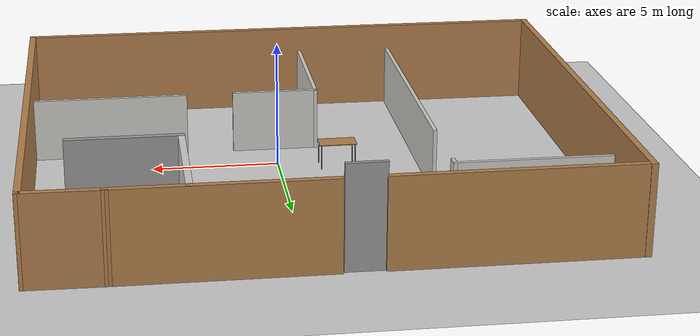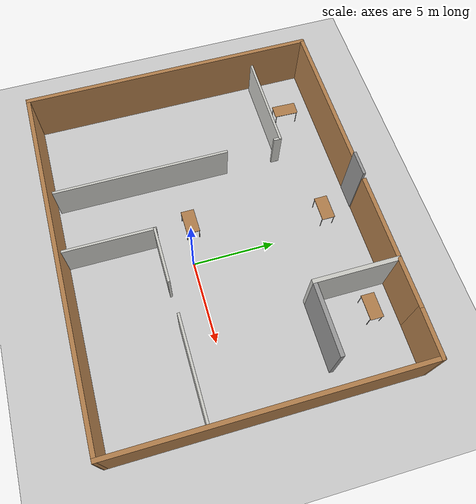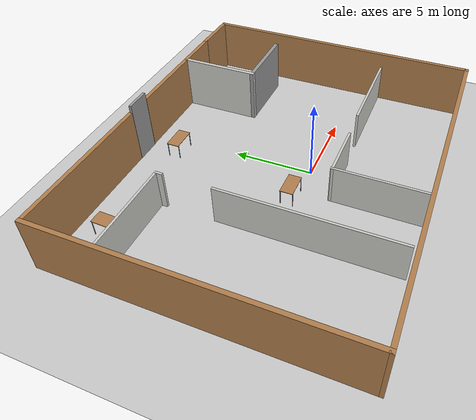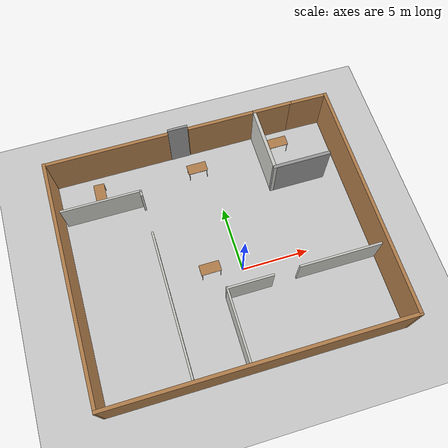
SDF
<sdf version="1.6">
 <world name="default">
  <light name="sun" type="directional">
   <pose>0 0 10 0 -0 0</pose>
   <diffuse>0.8 0.8 0.8 1</diffuse>
   <specular>0.2 0.2 0.2 1</specular>
   <attenuation>
    <range>1000</range>
    <constant>0.9</constant>
    <linear>0.01</linear>
    <quadratic>0.001</quadratic>
   </attenuation>
   <direction>-0.5 0.1 -0.9</direction>
  </light>
  <model name="ground_plane">
   <static>1</static>
   <link name="link">
    <collision name="collision">
     <geometry><plane><normal>0 0 1</normal><size>100 100</size></plane></geometry>
     <surface>
      <contact><collide_bitmask>65535</collide_bitmask></contact>
      <friction><ode><mu>100</mu><mu2>50</mu2></ode></friction>
     </surface>
    </collision>
    <visual name="visual">
     <cast_shadows>0</cast_shadows>
     <geometry><plane><normal>0 0 1</normal><size>100 100</size></plane></geometry>
     <material>
      <script><uri>file://media/materials/scripts/gazebo.material</uri><name>Gazebo/Grey</name></script>
     </material>
    </visual>
   </link>
  </model>
  <gravity>0 0 -9.8</gravity>
  <magnetic_field>6e-06 2.3e-05 -4.2e-05</magnetic_field>
  <atmosphere type="adiabatic"/>
  <physics name="default_physics" default="0" type="ode">
   <max_step_size>0.001</max_step_size>
   <real_time_factor>1</real_time_factor>
   <real_time_update_rate>1000</real_time_update_rate>
  </physics>
  <scene><ambient>0.4 0.4 0.4 1</ambient><background>0.7 0.7 0.7 1</background><shadows>1</shadows></scene>
  <audio><device>default</device></audio>
  <spherical_coordinates>
   <surface_model>EARTH_WGS84</surface_model>
   <latitude_deg>0</latitude_deg>
   <longitude_deg>0</longitude_deg>
   <elevation>0</elevation>
   <heading_deg>0</heading_deg>
  </spherical_coordinates>
  <model name="Building">
   <pose>-1.05841 1.60982 0 0 -0 0</pose>
   <link name="Door_0">
    <collision name="Door_0_Collision">
     <geometry><box><size>1.5 0.17 4</size></box></geometry>
     <pose>0 0 2 0 -0 0</pose>
    </collision>
    <visual name="Door_0_Visual">
     <pose>0 0 2 0 -0 0</pose>
     <geometry><box><size>1.5 0.17 4</size></box></geometry>
     <material>
      <script><uri>file://media/materials/scripts/gazebo.material</uri><name>Gazebo/Grey</name></script>
     </material>
    </visual>
    <pose>-0.815483 8.87818 0 0 -0 0</pose>
   </link>
   <link name="Wall_1">
    <collision name="Wall_1_Collision">
     <geometry><box><size>9.25 0.25 3.5</size></box></geometry>
     <pose>0 0 1.75 0 -0 0</pose>
    </collision>
    <visual name="Wall_1_Visual">
     <pose>0 0 1.75 0 -0 0</pose>
     <geometry><box><size>9.25 0.25 3.5</size></box></geometry>
     <material>
      <script><uri>file://media/materials/scripts/gazebo.material</uri><name>Gazebo/Wood</name></script>
      <ambient>1 1 1 1</ambient>
     </material>
     <meta><layer>0</layer></meta>
    </visual>
    <pose>-6.14568 8.92929 0 0 -0 0</pose>
   </link>
   <link name="Wall_13">
    <collision name="Wall_13_Collision">
     <geometry><box><size>0.15 0.15 2.5</size></box></geometry>
     <pose>0 0 1.25 0 -0 0</pose>
    </collision>
    <visual name="Wall_13_Visual">
     <pose>0 0 1.25 0 -0 0</pose>
     <geometry><box><size>0.15 0.15 2.5</size></box></geometry>
     <material>
      <script><uri>file://media/materials/scripts/gazebo.material</uri><name>Gazebo/Grey</name></script>
      <ambient>1 1 1 1</ambient>
     </material>
     <meta><layer>0</layer></meta>
    </visual>
    <pose>-10.7159 8.91724 0 0 -0 0</pose>
   </link>
   <link name="Wall_14">
    <collision name="Wall_14_Collision">
     <geometry><box><size>0.15 0.15 2.5</size></box></geometry>
     <pose>0 0 1.25 0 -0 0</pose>
    </collision>
    <visual name="Wall_14_Visual">
     <pose>0 0 1.25 0 -0 0</pose>
     <geometry><box><size>0.15 0.15 2.5</size></box></geometry>
     <material>
      <script><uri>file://media/materials/scripts/gazebo.material</uri><name>Gazebo/Grey</name></script>
      <ambient>1 1 1 1</ambient>
     </material>
     <meta><layer>0</layer></meta>
    </visual>
    <pose>-10.7159 8.91724 0 0 -0 0</pose>
   </link>
   <link name="Wall_17">
    <collision name="Wall_17_Collision">
     <geometry><box><size>5.10048 0.25 3.5</size></box></geometry>
     <pose>0 0 1.75 0 -0 0</pose>
    </collision>
    <visual name="Wall_17_Visual">
     <pose>0 0 1.75 0 -0 0</pose>
     <geometry><box><size>5.10048 0.25 3.5</size></box></geometry>
     <material>
      <script><uri>file://media/materials/scripts/gazebo.material</uri><name>Gazebo/CeilingTiled</name></script>
      <ambient>0 0 0 1</ambient>
     </material>
     <meta><layer>0</layer></meta>
    </visual>
    <pose>5.1471 6.47424 0 0 -0 -1.5708</pose>
   </link>
   <link name="Wall_18">
    <collision name="Wall_18_Collision">
     <geometry><box><size>4.35047 0.25 3.5</size></box></geometry>
     <pose>0 0 1.75 0 -0 0</pose>
    </collision>
    <visual name="Wall_18_Visual">
     <pose>0 0 1.75 0 -0 0</pose>
     <geometry><box><size>4.35047 0.25 3.5</size></box></geometry>
     <material>
      <script><uri>file://media/materials/scripts/gazebo.material</uri><name>Gazebo/Grey</name></script>
      <ambient>0 0 0 1</ambient>
     </material>
     <meta><layer>0</layer></meta>
    </visual>
    <pose>7.1971 4.04924 0 0 -0 0</pose>
   </link>
   <link name="Wall_3">
    <collision name="Wall_3_Collision">
     <geometry><box><size>8.09972 0.25 3.5</size></box></geometry>
     <pose>0 0 1.75 0 -0 0</pose>
    </collision>
    <visual name="Wall_3_Visual">
     <pose>0 0 1.75 0 -0 0</pose>
     <geometry><box><size>8.09972 0.25 3.5</size></box></geometry>
     <material>
      <script><uri>file://media/materials/scripts/gazebo.material</uri><name>Gazebo/Wood</name></script>
      <ambient>1 1 1 1</ambient>
     </material>
     <meta><layer>0</layer></meta>
    </visual>
    <pose>4.0241 8.94424 0 0 -0 0</pose>
   </link>
   <link name="Wall_4">
    <collision name="Wall_4_Collision">
     <geometry><box><size>3.10115 0.25 3.5</size></box></geometry>
     <pose>0 0 1.75 0 -0 0</pose>
    </collision>
    <visual name="Wall_4_Visual">
     <pose>0 0 1.75 0 -0 0</pose>
     <geometry><box><size>3.10115 0.25 3.5</size></box></geometry>
     <material>
      <script><uri>file://media/materials/scripts/gazebo.material</uri><name>Gazebo/Wood</name></script>
      <ambient>1 1 1 1</ambient>
     </material>
     <meta><layer>0</layer></meta>
    </visual>
    <pose>9.3741 8.92424 0 0 -0 -0.014034</pose>
   </link>
   <link name="Wall_5">
    <collision name="Wall_5_Collision">
     <geometry><box><size>18.1004 0.25 3.5</size></box></geometry>
     <pose>0 0 1.75 0 -0 0</pose>
    </collision>
    <visual name="Wall_5_Visual">
     <pose>0 0 1.75 0 -0 0</pose>
     <geometry><box><size>18.1004 0.25 3.5</size></box></geometry>
     <material>
      <script><uri>file://media/materials/scripts/gazebo.material</uri><name>Gazebo/Wood</name></script>
      <ambient>1 1 1 1</ambient>
     </material>
     <meta><layer>0</layer></meta>
    </visual>
    <pose>10.7991 -0.020758 0 0 -0 -1.5708</pose>
   </link>
   <link name="Wall_6">
    <collision name="Wall_6_Collision">
     <geometry><box><size>21.8503 0.25 3.5</size></box></geometry>
     <pose>0 0 1.75 0 -0 0</pose>
    </collision>
    <visual name="Wall_6_Visual">
     <pose>0 0 1.75 0 -0 0</pose>
     <geometry><box><size>21.8503 0.25 3.5</size></box></geometry>
     <material>
      <script><uri>file://media/materials/scripts/gazebo.material</uri><name>Gazebo/Wood</name></script>
      <ambient>1 1 1 1</ambient>
     </material>
     <meta><layer>0</layer></meta>
    </visual>
    <pose>-0.000902 -8.92576 0 0 -0 3.13974</pose>
   </link>
   <link name="Wall_7">
    <collision name="Wall_7_Collision">
     <geometry><box><size>18.1 0.25 3.5</size></box></geometry>
     <pose>0 0 1.75 0 -0 0</pose>
    </collision>
    <visual name="Wall_7_Visual">
     <pose>0 0 1.75 0 -0 0</pose>
     <geometry><box><size>18.1 0.25 3.5</size></box></geometry>
     <material>
      <script><uri>file://media/materials/scripts/gazebo.material</uri><name>Gazebo/Wood</name></script>
      <ambient>1 1 1 1</ambient>
     </material>
     <meta><layer>0</layer></meta>
    </visual>
    <pose>-10.8009 0.019242 0 0 -0 1.5708</pose>
   </link>
   <link name="Window_0">
    <collision name="Window_0_Collision">
     <geometry><box><size>0.8 0.17 0.8</size></box></geometry>
     <pose>0 0 0.4 0 -0 0</pose>
    </collision>
    <visual name="Window_0_Visual">
     <pose>0 0 0.4 0 -0 0</pose>
     <geometry><box><size>0.8 0.17 0.8</size></box></geometry>
     <material>
      <script><uri>file://media/materials/scripts/gazebo.material</uri><name>Gazebo/Grey</name></script>
     </material>
    </visual>
    <pose>8.40754 8.94648 0.5 0 -0 0</pose>
   </link>
   <static>1</static>
  </model>
  <model name="BuildingAdd">
   <pose>-0.92237 -0.11893 0 0 -0 0</pose>
   <link name="Wall_0">
    <collision name="Wall_0_Collision">
     <geometry><box><size>6.25 0.15 2.5</size></box></geometry>
     <pose>0 0 1.25 0 -0 0</pose>
    </collision>
    <visual name="Wall_0_Visual">
     <pose>0 0 1.25 0 -0 0</pose>
     <geometry><box><size>6.25 0.15 2.5</size></box></geometry>
     <material>
      <script><uri>file://media/materials/scripts/gazebo.material</uri><name>Gazebo/CeilingTiled</name></script>
      <ambient>0.533333 0.541176 0.521569 1</ambient>
     </material>
     <meta><layer>0</layer></meta>
    </visual>
    <pose>7.54237 -1.60107 0 0 -0 3.14159</pose>
   </link>
   <link name="Wall_10">
    <collision name="Wall_10_Collision">
     <geometry><box><size>6 0.15 2.5</size></box></geometry>
     <pose>0 0 1.25 0 -0 0</pose>
    </collision>
    <visual name="Wall_10_Visual">
     <pose>0 0 1.25 0 -0 0</pose>
     <geometry><box><size>6 0.15 2.5</size></box></geometry>
     <material>
      <script><uri>file://media/materials/scripts/gazebo.material</uri><name>Gazebo/CeilingTiled</name></script>
      <ambient>0.533333 0.541176 0.521569 1</ambient>
     </material>
     <meta><layer>0</layer></meta>
    </visual>
    <pose>-7.66737 7.21686 0 0 -0 3.14159</pose>
   </link>
   <link name="Wall_12">
    <collision name="Wall_12_Collision">
     <geometry><box><size>0.5 0.15 2.5</size></box></geometry>
     <pose>0 0 1.25 0 -0 0</pose>
    </collision>
    <visual name="Wall_12_Visual">
     <pose>0 0 1.25 0 -0 0</pose>
     <geometry><box><size>0.5 0.15 2.5</size></box></geometry>
     <material>
      <script><uri>file://media/materials/scripts/gazebo.material</uri><name>Gazebo/CeilingTiled</name></script>
      <ambient>0.533333 0.541176 0.521569 1</ambient>
     </material>
     <meta><layer>0</layer></meta>
    </visual>
    <pose>-4.74237 7.04186 0 0 -0 -1.5708</pose>
   </link>
   <link name="Wall_3">
    <collision name="Wall_3_Collision">
     <geometry><box><size>3.46053 0.15 2.5</size></box></geometry>
     <pose>0 0 1.25 0 -0 0</pose>
    </collision>
    <visual name="Wall_3_Visual">
     <pose>0 0 1.25 0 -0 0</pose>
     <geometry><box><size>3.46053 0.15 2.5</size></box></geometry>
     <material>
      <script><uri>file://media/materials/scripts/gazebo.material</uri><name>Gazebo/CeilingTiled</name></script>
      <ambient>0.533333 0.541176 0.521569 1</ambient>
     </material>
     <meta><layer>0</layer></meta>
    </visual>
    <pose>0.827039 -1.65732 0 0 -0 0</pose>
   </link>
   <link name="Wall_5">
    <collision name="Wall_5_Collision">
     <geometry><box><size>5.75 0.15 2.5</size></box></geometry>
     <pose>0 0 1.25 0 -0 0</pose>
    </collision>
    <visual name="Wall_5_Visual">
     <pose>0 0 1.25 0 -0 0</pose>
     <geometry><box><size>5.75 0.15 2.5</size></box></geometry>
     <material>
      <script><uri>file://media/materials/scripts/gazebo.material</uri><name>Gazebo/CeilingTiled</name></script>
      <ambient>0.533333 0.541176 0.521569 1</ambient>
     </material>
     <meta><layer>0</layer></meta>
    </visual>
    <pose>-0.827734 -4.41686 0 0 -0 -1.5708</pose>
   </link>
   <link name="Wall_7">
    <collision name="Wall_7_Collision">
     <geometry><box><size>10.75 0.15 2.5</size></box></geometry>
     <pose>0 0 1.25 0 -0 0</pose>
    </collision>
    <visual name="Wall_7_Visual">
     <pose>0 0 1.25 0 -0 0</pose>
     <geometry><box><size>10.75 0.15 2.5</size></box></geometry>
     <material>
      <script><uri>file://media/materials/scripts/gazebo.material</uri><name>Gazebo/CeilingTiled</name></script>
      <ambient>0.533333 0.541176 0.521569 1</ambient>
     </material>
     <meta><layer>0</layer></meta>
    </visual>
    <pose>-4.71035 -1.55701 0 0 -0 -1.5708</pose>
   </link>
   <static>1</static>
  </model>
  <model name="table">
   <static>1</static>
   <link name="link">
    <collision name="surface">
     <pose>0 0 1 0 -0 0</pose>
     <geometry><box><size>1.5 0.8 0.03</size></box></geometry>
     <surface><friction><ode><mu>0.6</mu><mu2>0.6</mu2></ode></friction></surface>
    </collision>
    <visual name="visual1">
     <pose>0 0 1 0 -0 0</pose>
     <geometry><box><size>1.5 0.8 0.03</size></box></geometry>
     <material>
      <script><uri>file://media/materials/scripts/gazebo.material</uri><name>Gazebo/Wood</name></script>
     </material>
    </visual>
    <collision name="front_left_leg">
     <pose>0.68 0.38 0.5 0 -0 0</pose>
     <geometry><cylinder><radius>0.02</radius><length>1</length></cylinder></geometry>
    </collision>
    <visual name="front_left_leg">
     <pose>0.68 0.38 0.5 0 -0 0</pose>
     <geometry><cylinder><radius>0.02</radius><length>1</length></cylinder></geometry>
     <material>
      <script><uri>file://media/materials/scripts/gazebo.material</uri><name>Gazebo/Grey</name></script>
     </material>
    </visual>
    <collision name="front_right_leg">
     <pose>0.68 -0.38 0.5 0 -0 0</pose>
     <geometry><cylinder><radius>0.02</radius><length>1</length></cylinder></geometry>
    </collision>
    <visual name="front_right_leg">
     <pose>0.68 -0.38 0.5 0 -0 0</pose>
     <geometry><cylinder><radius>0.02</radius><length>1</length></cylinder></geometry>
     <material>
      <script><uri>file://media/materials/scripts/gazebo.material</uri><name>Gazebo/Grey</name></script>
     </material>
    </visual>
    <collision name="back_right_leg">
     <pose>-0.68 -0.38 0.5 0 -0 0</pose>
     <geometry><cylinder><radius>0.02</radius><length>1</length></cylinder></geometry>
    </collision>
    <visual name="back_right_leg">
     <pose>-0.68 -0.38 0.5 0 -0 0</pose>
     <geometry><cylinder><radius>0.02</radius><length>1</length></cylinder></geometry>
     <material>
      <script><uri>file://media/materials/scripts/gazebo.material</uri><name>Gazebo/Grey</name></script>
     </material>
    </visual>
    <collision name="back_left_leg">
     <pose>-0.68 0.38 0.5 0 -0 0</pose>
     <geometry><cylinder><radius>0.02</radius><length>1</length></cylinder></geometry>
    </collision>
    <visual name="back_left_leg">
     <pose>-0.68 0.38 0.5 0 -0 0</pose>
     <geometry><cylinder><radius>0.02</radius><length>1</length></cylinder></geometry>
     <material>
      <script><uri>file://media/materials/scripts/gazebo.material</uri><name>Gazebo/Grey</name></script>
     </material>
    </visual>
   </link>
   <pose>-1.0384 8.54838 0 0 -0 0</pose>
  </model>
  <model name="table_clone">
   <static>1</static>
   <link name="link">
    <collision name="surface">
     <pose>0 0 1 0 -0 0</pose>
     <geometry><box><size>1.5 0.8 0.03</size></box></geometry>
     <surface><friction><ode><mu>0.6</mu><mu2>0.6</mu2></ode></friction></surface>
    </collision>
    <visual name="visual1">
     <pose>0 0 1 0 -0 0</pose>
     <geometry><box><size>1.5 0.8 0.03</size></box></geometry>
     <material>
      <script><uri>file://media/materials/scripts/gazebo.material</uri><name>Gazebo/Wood</name></script>
     </material>
    </visual>
    <collision name="front_left_leg">
     <pose>0.68 0.38 0.5 0 -0 0</pose>
     <geometry><cylinder><radius>0.02</radius><length>1</length></cylinder></geometry>
    </collision>
    <visual name="front_left_leg">
     <pose>0.68 0.38 0.5 0 -0 0</pose>
     <geometry><cylinder><radius>0.02</radius><length>1</length></cylinder></geometry>
     <material>
      <script><uri>file://media/materials/scripts/gazebo.material</uri><name>Gazebo/Grey</name></script>
     </material>
    </visual>
    <collision name="front_right_leg">
     <pose>0.68 -0.38 0.5 0 -0 0</pose>
     <geometry><cylinder><radius>0.02</radius><length>1</length></cylinder></geometry>
    </collision>
    <visual name="front_right_leg">
     <pose>0.68 -0.38 0.5 0 -0 0</pose>
     <geometry><cylinder><radius>0.02</radius><length>1</length></cylinder></geometry>
     <material>
      <script><uri>file://media/materials/scripts/gazebo.material</uri><name>Gazebo/Grey</name></script>
     </material>
    </visual>
    <collision name="back_right_leg">
     <pose>-0.68 -0.38 0.5 0 -0 0</pose>
     <geometry><cylinder><radius>0.02</radius><length>1</length></cylinder></geometry>
    </collision>
    <visual name="back_right_leg">
     <pose>-0.68 -0.38 0.5 0 -0 0</pose>
     <geometry><cylinder><radius>0.02</radius><length>1</length></cylinder></geometry>
     <material>
      <script><uri>file://media/materials/scripts/gazebo.material</uri><name>Gazebo/Grey</name></script>
     </material>
    </visual>
    <collision name="back_left_leg">
     <pose>-0.68 0.38 0.5 0 -0 0</pose>
     <geometry><cylinder><radius>0.02</radius><length>1</length></cylinder></geometry>
    </collision>
    <visual name="back_left_leg">
     <pose>-0.68 0.38 0.5 0 -0 0</pose>
     <geometry><cylinder><radius>0.02</radius><length>1</length></cylinder></geometry>
     <material>
      <script><uri>file://media/materials/scripts/gazebo.material</uri><name>Gazebo/Grey</name></script>
     </material>
    </visual>
   </link>
   <pose>-8.61704 8.5535 0 0 -0 1.5424</pose>
  </model>
  <model name="ball">
   <link name="link_0">
    <inertial>
     <mass>1</mass>
     <inertia><ixx>0.1</ixx><ixy>0</ixy><ixz>0</ixz><iyy>0.1</iyy><iyz>0</iyz><izz>0.1</izz></inertia>
    </inertial>
    <visual name="visual">
     <geometry><sphere><radius>0.1</radius></sphere></geometry>
     <material>
      <lighting>1</lighting>
      <script><uri>file://media/materials/scripts/gazebo.material</uri><name>Gazebo/Grey</name></script>
      <shader type="vertex"><normal_map>__default__</normal_map></shader>
      <ambient>1 1 1 1</ambient>
      <diffuse>1 1 1 1</diffuse>
      <specular>1 1 1 1</specular>
      <emissive>1 1 1 1</emissive>
     </material>
    </visual>
    <collision name="collision">
     <geometry><sphere><radius>0.1</radius></sphere></geometry>
     <surface>
      <friction>
       <ode><mu>1</mu><mu2>1</mu2><fdir1>0 0 0</fdir1><slip1>0</slip1><slip2>0</slip2></ode>
       <torsional>
        <coefficient>1</coefficient>
        <patch_radius>0</patch_radius>
        <surface_radius>0</surface_radius>
        <use_patch_radius>1</use_patch_radius>
        <ode><slip>0</slip></ode>
       </torsional>
      </friction>
      <bounce><restitution_coefficient>0</restitution_coefficient><threshold>1e+06</threshold></bounce>
      <contact>
       <collide_without_contact>0</collide_without_contact>
       <collide_without_contact_bitmask>1</collide_without_contact_bitmask>
       <collide_bitmask>1</collide_bitmask>
       <ode>
        <soft_cfm>0</soft_cfm>
        <soft_erp>0.2</soft_erp>
        <kp>1e+13</kp>
        <kd>1</kd>
        <max_vel>0.01</max_vel>
        <min_depth>0</min_depth>
       </ode>
       <bullet>
        <split_impulse>1</split_impulse>
        <split_impulse_penetration_threshold>-0.01</split_impulse_penetration_threshold>
        <soft_cfm>0</soft_cfm>
        <soft_erp>0.2</soft_erp>
        <kp>1e+13</kp>
        <kd>1</kd>
       </bullet>
      </contact>
     </surface>
    </collision>
   </link>
   <static>0</static>
   <pose>0.097454 4.36821 0.1 0 -0 0</pose>
  </model>
  <model name="table_clone_0">
   <static>1</static>
   <link name="link">
    <collision name="surface">
     <pose>0 0 1 0 -0 0</pose>
     <geometry><box><size>1.5 0.8 0.03</size></box></geometry>
     <surface><friction><ode><mu>0.6</mu><mu2>0.6</mu2></ode></friction></surface>
    </collision>
    <visual name="visual1">
     <pose>0 0 1 0 -0 0</pose>
     <geometry><box><size>1.5 0.8 0.03</size></box></geometry>
     <material>
      <script><uri>file://media/materials/scripts/gazebo.material</uri><name>Gazebo/Wood</name></script>
     </material>
    </visual>
    <collision name="front_left_leg">
     <pose>0.68 0.38 0.5 0 -0 0</pose>
     <geometry><cylinder><radius>0.02</radius><length>1</length></cylinder></geometry>
    </collision>
    <visual name="front_left_leg">
     <pose>0.68 0.38 0.5 0 -0 0</pose>
     <geometry><cylinder><radius>0.02</radius><length>1</length></cylinder></geometry>
     <material>
      <script><uri>file://media/materials/scripts/gazebo.material</uri><name>Gazebo/Grey</name></script>
     </material>
    </visual>
    <collision name="front_right_leg">
     <pose>0.68 -0.38 0.5 0 -0 0</pose>
     <geometry><cylinder><radius>0.02</radius><length>1</length></cylinder></geometry>
    </collision>
    <visual name="front_right_leg">
     <pose>0.68 -0.38 0.5 0 -0 0</pose>
     <geometry><cylinder><radius>0.02</radius><length>1</length></cylinder></geometry>
     <material>
      <script><uri>file://media/materials/scripts/gazebo.material</uri><name>Gazebo/Grey</name></script>
     </material>
    </visual>
    <collision name="back_right_leg">
     <pose>-0.68 -0.38 0.5 0 -0 0</pose>
     <geometry><cylinder><radius>0.02</radius><length>1</length></cylinder></geometry>
    </collision>
    <visual name="back_right_leg">
     <pose>-0.68 -0.38 0.5 0 -0 0</pose>
     <geometry><cylinder><radius>0.02</radius><length>1</length></cylinder></geometry>
     <material>
      <script><uri>file://media/materials/scripts/gazebo.material</uri><name>Gazebo/Grey</name></script>
     </material>
    </visual>
    <collision name="back_left_leg">
     <pose>-0.68 0.38 0.5 0 -0 0</pose>
     <geometry><cylinder><radius>0.02</radius><length>1</length></cylinder></geometry>
    </collision>
    <visual name="back_left_leg">
     <pose>-0.68 0.38 0.5 0 -0 0</pose>
     <geometry><cylinder><radius>0.02</radius><length>1</length></cylinder></geometry>
     <material>
      <script><uri>file://media/materials/scripts/gazebo.material</uri><name>Gazebo/Grey</name></script>
     </material>
    </visual>
   </link>
   <pose>-2.3442 0.440496 0 0 -0 0</pose>
  </model>
  <model name="table_clone_1">
   <static>1</static>
   <link name="link">
    <collision name="surface">
     <pose>0 0 1 0 -0 0</pose>
     <geometry><box><size>1.5 0.8 0.03</size></box></geometry>
     <surface><friction><ode><mu>0.6</mu><mu2>0.6</mu2></ode></friction></surface>
    </collision>
    <visual name="visual1">
     <pose>0 0 1 0 -0 0</pose>
     <geometry><box><size>1.5 0.8 0.03</size></box></geometry>
     <material>
      <script><uri>file://media/materials/scripts/gazebo.material</uri><name>Gazebo/Wood</name></script>
     </material>
    </visual>
    <collision name="front_left_leg">
     <pose>0.68 0.38 0.5 0 -0 0</pose>
     <geometry><cylinder><radius>0.02</radius><length>1</length></cylinder></geometry>
    </collision>
    <visual name="front_left_leg">
     <pose>0.68 0.38 0.5 0 -0 0</pose>
     <geometry><cylinder><radius>0.02</radius><length>1</length></cylinder></geometry>
     <material>
      <script><uri>file://media/materials/scripts/gazebo.material</uri><name>Gazebo/Grey</name></script>
     </material>
    </visual>
    <collision name="front_right_leg">
     <pose>0.68 -0.38 0.5 0 -0 0</pose>
     <geometry><cylinder><radius>0.02</radius><length>1</length></cylinder></geometry>
    </collision>
    <visual name="front_right_leg">
     <pose>0.68 -0.38 0.5 0 -0 0</pose>
     <geometry><cylinder><radius>0.02</radius><length>1</length></cylinder></geometry>
     <material>
      <script><uri>file://media/materials/scripts/gazebo.material</uri><name>Gazebo/Grey</name></script>
     </material>
    </visual>
    <collision name="back_right_leg">
     <pose>-0.68 -0.38 0.5 0 -0 0</pose>
     <geometry><cylinder><radius>0.02</radius><length>1</length></cylinder></geometry>
    </collision>
    <visual name="back_right_leg">
     <pose>-0.68 -0.38 0.5 0 -0 0</pose>
     <geometry><cylinder><radius>0.02</radius><length>1</length></cylinder></geometry>
     <material>
      <script><uri>file://media/materials/scripts/gazebo.material</uri><name>Gazebo/Grey</name></script>
     </material>
    </visual>
    <collision name="back_left_leg">
     <pose>-0.68 0.38 0.5 0 -0 0</pose>
     <geometry><cylinder><radius>0.02</radius><length>1</length></cylinder></geometry>
    </collision>
    <visual name="back_left_leg">
     <pose>-0.68 0.38 0.5 0 -0 0</pose>
     <geometry><cylinder><radius>0.02</radius><length>1</length></cylinder></geometry>
     <material>
      <script><uri>file://media/materials/scripts/gazebo.material</uri><name>Gazebo/Grey</name></script>
     </material>
    </visual>
   </link>
   <pose>5.60835 8.96252 0 0 -0 0</pose>
  </model>
 </world>
</sdf>
